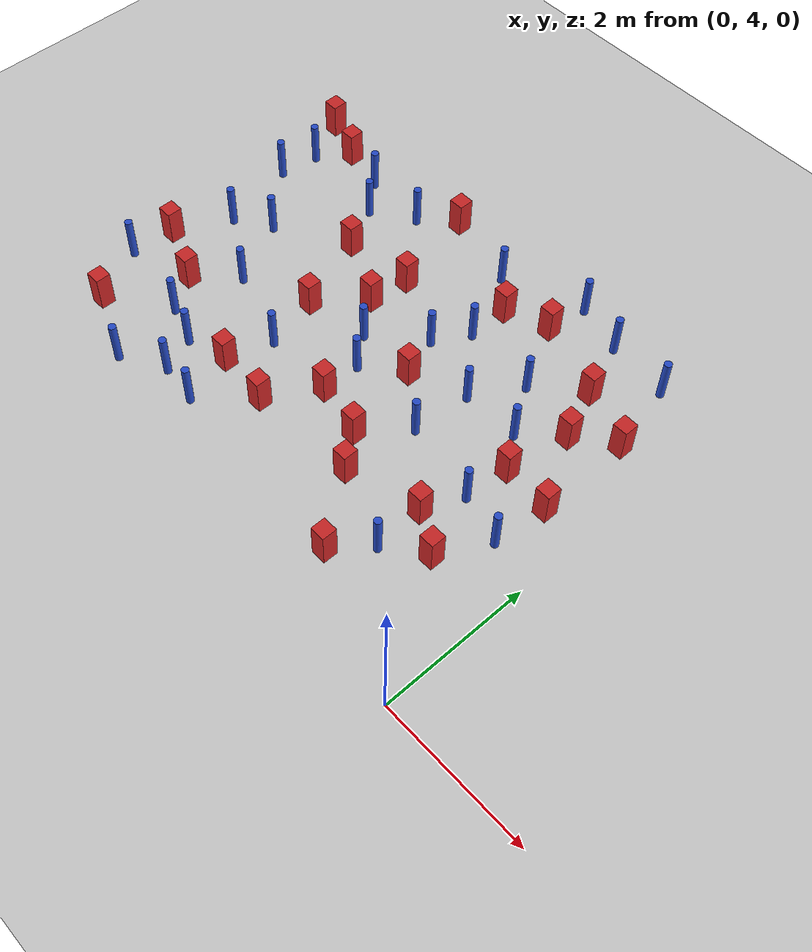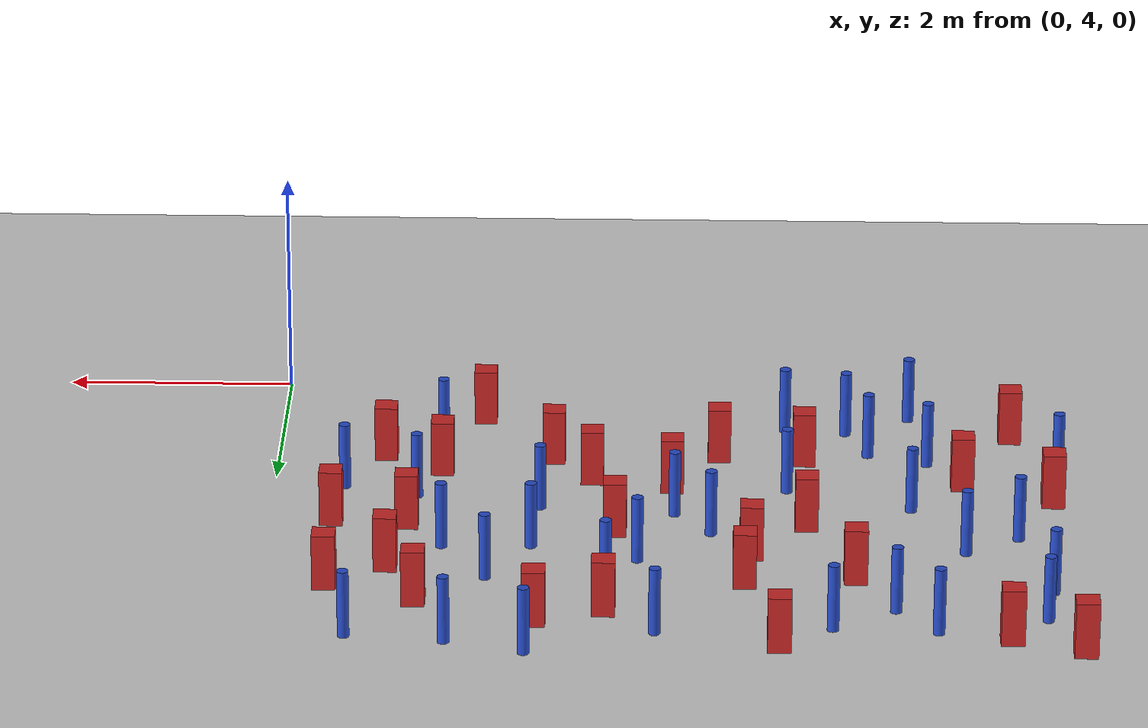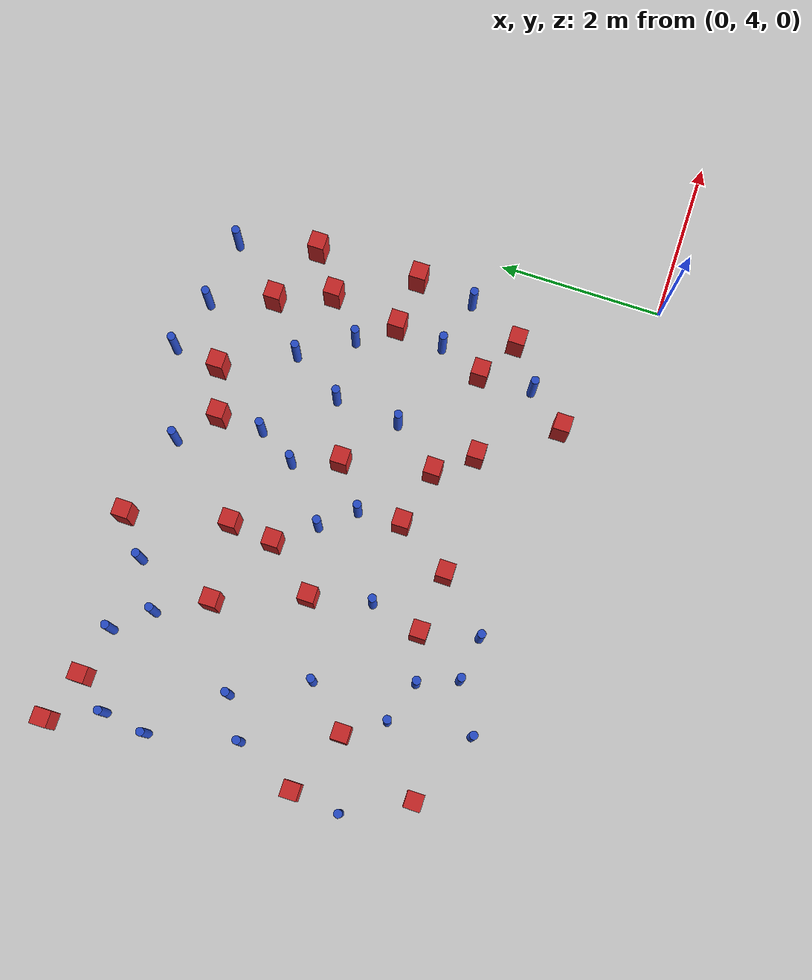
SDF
<sdf version="1.6">
 <world name="default">
  <model name="ground_plane">
   <static>1</static>
   <link name="link">
    <collision name="collision">
     <geometry><plane><normal>0 0 1</normal><size>100 100</size></plane></geometry>
     <surface><friction><ode><mu>100</mu><mu2>50</mu2></ode></friction></surface>
    </collision>
    <visual name="visual">
     <cast_shadows>0</cast_shadows>
     <geometry><plane><normal>0 0 1</normal><size>100 100</size></plane></geometry>
     <material>
      <ambient>1.0 1.0 1.0 1.0</ambient>
      <diffuse>0.8 0.8 0.8 1.0</diffuse>
      <specular>0.01 0.01 0.01 1.000000</specular>
     </material>
    </visual>
   </link>
  </model>
  <model name="pole_obstacle3">
   <static>true</static>
   <pose>-2.92639177187 8.12203701755 2.88873142074e-08 -9.90536692318e-09 4.6021994893e-07 -1.20965994988e-07</pose>
   <link name="link">
    <pose>0 0 0.3 0 -0 0</pose>
    <inertial>
     <mass>1</mass>
     <inertia><ixx>0.145833</ixx><ixy>0</ixy><ixz>0</ixz><iyy>0.145833</iyy><iyz>0</iyz><izz>0.125</izz></inertia>
    </inertial>
    <collision name="collision">
     <geometry><cylinder><radius>0.05</radius><length>.6</length></cylinder></geometry>
    </collision>
    <visual name="visual">
     <geometry><cylinder><radius>0.05</radius><length>.6</length></cylinder></geometry>
     <material>
      <script><name>Gazebo/Blue</name><uri>file://media/materials/scripts/gazebo.material</uri></script>
     </material>
    </visual>
   </link>
  </model>
  <model name="square_post_obstacle19">
   <static>true</static>
   <pose>-2.99249537254 7.10231828787 8.22691968438e-08 7.2212513382e-06 -7.54495500217e-07 2.29674213826e-05</pose>
   <link name="link">
    <pose>0 0 0.25 0 -0 0</pose>
    <inertial>
     <mass>100</mass>
     <inertia>
      <ixx>0.166667</ixx>
      <ixy>0</ixy>
      <ixz>0</ixz>
      <iyy>0.166667</iyy>
      <iyz>0</iyz>
      <izz>0.166667</izz>
     </inertia>
    </inertial>
    <collision name="collision"><geometry><box><size>.2 .2 .5</size></box></geometry></collision>
    <visual name="visual">
     <geometry><box><size>.2 .2 .5</size></box></geometry>
     <material>
      <script><name>Gazebo/Red</name><uri>file://media/materials/scripts/gazebo.material</uri></script>
     </material>
    </visual>
   </link>
  </model>
  <model name="square_post_obstacle24">
   <static>true</static>
   <pose>-6.79952586427 6.41609025633 8.22691968438e-08 7.2212513382e-06 -7.54495500217e-07 2.29674213826e-05</pose>
   <link name="link">
    <pose>0 0 0.25 0 -0 0</pose>
    <inertial>
     <mass>100</mass>
     <inertia>
      <ixx>0.166667</ixx>
      <ixy>0</ixy>
      <ixz>0</ixz>
      <iyy>0.166667</iyy>
      <iyz>0</iyz>
      <izz>0.166667</izz>
     </inertia>
    </inertial>
    <collision name="collision"><geometry><box><size>.2 .2 .5</size></box></geometry></collision>
    <visual name="visual">
     <geometry><box><size>.2 .2 .5</size></box></geometry>
     <material>
      <script><name>Gazebo/Red</name><uri>file://media/materials/scripts/gazebo.material</uri></script>
     </material>
    </visual>
   </link>
  </model>
  <model name="square_post_obstacle31">
   <static>true</static>
   <pose>-1.0478211439 7.84302001097 8.22691968438e-08 7.2212513382e-06 -7.54495500217e-07 2.29674213826e-05</pose>
   <link name="link">
    <pose>0 0 0.25 0 -0 0</pose>
    <inertial>
     <mass>100</mass>
     <inertia>
      <ixx>0.166667</ixx>
      <ixy>0</ixy>
      <ixz>0</ixz>
      <iyy>0.166667</iyy>
      <iyz>0</iyz>
      <izz>0.166667</izz>
     </inertia>
    </inertial>
    <collision name="collision"><geometry><box><size>.2 .2 .5</size></box></geometry></collision>
    <visual name="visual">
     <geometry><box><size>.2 .2 .5</size></box></geometry>
     <material>
      <script><name>Gazebo/Red</name><uri>file://media/materials/scripts/gazebo.material</uri></script>
     </material>
    </visual>
   </link>
  </model>
  <model name="pole_obstacle22">
   <static>true</static>
   <pose>-2.26788561543 9.45509403509 2.88873142074e-08 -9.90536692318e-09 4.6021994893e-07 -1.20965994988e-07</pose>
   <link name="link">
    <pose>0 0 0.3 0 -0 0</pose>
    <inertial>
     <mass>1</mass>
     <inertia><ixx>0.145833</ixx><ixy>0</ixy><ixz>0</ixz><iyy>0.145833</iyy><iyz>0</iyz><izz>0.125</izz></inertia>
    </inertial>
    <collision name="collision">
     <geometry><cylinder><radius>0.05</radius><length>.6</length></cylinder></geometry>
    </collision>
    <visual name="visual">
     <geometry><cylinder><radius>0.05</radius><length>.6</length></cylinder></geometry>
     <material>
      <script><name>Gazebo/Blue</name><uri>file://media/materials/scripts/gazebo.material</uri></script>
     </material>
    </visual>
   </link>
  </model>
  <model name="pole_obstacle24">
   <static>true</static>
   <pose>-2.27686648423 7.39670793614 2.88873142074e-08 -9.90536689859e-09 4.60219948989e-07 -1.20965994961e-07</pose>
   <link name="link">
    <pose>0 0 0.3 0 -0 0</pose>
    <inertial>
     <mass>1</mass>
     <inertia><ixx>0.145833</ixx><ixy>0</ixy><ixz>0</ixz><iyy>0.145833</iyy><iyz>0</iyz><izz>0.125</izz></inertia>
    </inertial>
    <collision name="collision">
     <geometry><cylinder><radius>0.05</radius><length>.6</length></cylinder></geometry>
    </collision>
    <visual name="visual">
     <geometry><cylinder><radius>0.05</radius><length>.6</length></cylinder></geometry>
     <material>
      <script><name>Gazebo/Blue</name><uri>file://media/materials/scripts/gazebo.material</uri></script>
     </material>
    </visual>
   </link>
  </model>
  <model name="pole_obstacle27">
   <static>true</static>
   <pose>-1.90231812255 8.03319931173 2.88873142074e-08 -9.90536689535e-09 4.60219948996e-07 -1.20965994956e-07</pose>
   <link name="link">
    <pose>0 0 0.3 0 -0 0</pose>
    <inertial>
     <mass>1</mass>
     <inertia><ixx>0.145833</ixx><ixy>0</ixy><ixz>0</ixz><iyy>0.145833</iyy><iyz>0</iyz><izz>0.125</izz></inertia>
    </inertial>
    <collision name="collision">
     <geometry><cylinder><radius>0.05</radius><length>.6</length></cylinder></geometry>
    </collision>
    <visual name="visual">
     <geometry><cylinder><radius>0.05</radius><length>.6</length></cylinder></geometry>
     <material>
      <script><name>Gazebo/Blue</name><uri>file://media/materials/scripts/gazebo.material</uri></script>
     </material>
    </visual>
   </link>
  </model>
  <model name="square_post_obstacle32">
   <static>true</static>
   <pose>-1.1926422702 6.98299563589 8.22691968438e-08 7.2212513382e-06 -7.54495500217e-07 2.29674213826e-05</pose>
   <link name="link">
    <pose>0 0 0.25 0 -0 0</pose>
    <inertial>
     <mass>100</mass>
     <inertia>
      <ixx>0.166667</ixx>
      <ixy>0</ixy>
      <ixz>0</ixz>
      <iyy>0.166667</iyy>
      <iyz>0</iyz>
      <izz>0.166667</izz>
     </inertia>
    </inertial>
    <collision name="collision"><geometry><box><size>.2 .2 .5</size></box></geometry></collision>
    <visual name="visual">
     <geometry><box><size>.2 .2 .5</size></box></geometry>
     <material>
      <script><name>Gazebo/Red</name><uri>file://media/materials/scripts/gazebo.material</uri></script>
     </material>
    </visual>
   </link>
  </model>
  <model name="pole_obstacle34">
   <static>true</static>
   <pose>-1.2561961197 6.39239754405 2.88873142074e-08 -9.90536689852e-09 4.60219948989e-07 -1.2096599496e-07</pose>
   <link name="link">
    <pose>0 0 0.3 0 -0 0</pose>
    <inertial>
     <mass>1</mass>
     <inertia><ixx>0.145833</ixx><ixy>0</ixy><ixz>0</ixz><iyy>0.145833</iyy><iyz>0</iyz><izz>0.125</izz></inertia>
    </inertial>
    <collision name="collision">
     <geometry><cylinder><radius>0.05</radius><length>.6</length></cylinder></geometry>
    </collision>
    <visual name="visual">
     <geometry><cylinder><radius>0.05</radius><length>.6</length></cylinder></geometry>
     <material>
      <script><name>Gazebo/Blue</name><uri>file://media/materials/scripts/gazebo.material</uri></script>
     </material>
    </visual>
   </link>
  </model>
  <model name="pole_obstacle36">
   <static>true</static>
   <pose>-3.81983759786 7.11145590867 2.88873142074e-08 -9.90536689859e-09 4.60219948989e-07 -1.20965994961e-07</pose>
   <link name="link">
    <pose>0 0 0.3 0 -0 0</pose>
    <inertial>
     <mass>1</mass>
     <inertia><ixx>0.145833</ixx><ixy>0</ixy><ixz>0</ixz><iyy>0.145833</iyy><iyz>0</iyz><izz>0.125</izz></inertia>
    </inertial>
    <collision name="collision">
     <geometry><cylinder><radius>0.05</radius><length>.6</length></cylinder></geometry>
    </collision>
    <visual name="visual">
     <geometry><cylinder><radius>0.05</radius><length>.6</length></cylinder></geometry>
     <material>
      <script><name>Gazebo/Blue</name><uri>file://media/materials/scripts/gazebo.material</uri></script>
     </material>
    </visual>
   </link>
  </model>
  <model name="pole_obstacle38">
   <static>true</static>
   <pose>-2.33661758871 6.60383194175 2.88873142074e-08 -9.90536689859e-09 4.60219948989e-07 -1.20965994961e-07</pose>
   <link name="link">
    <pose>0 0 0.3 0 -0 0</pose>
    <inertial>
     <mass>1</mass>
     <inertia><ixx>0.145833</ixx><ixy>0</ixy><ixz>0</ixz><iyy>0.145833</iyy><iyz>0</iyz><izz>0.125</izz></inertia>
    </inertial>
    <collision name="collision">
     <geometry><cylinder><radius>0.05</radius><length>.6</length></cylinder></geometry>
    </collision>
    <visual name="visual">
     <geometry><cylinder><radius>0.05</radius><length>.6</length></cylinder></geometry>
     <material>
      <script><name>Gazebo/Blue</name><uri>file://media/materials/scripts/gazebo.material</uri></script>
     </material>
    </visual>
   </link>
  </model>
  <model name="square_post_obstacle39">
   <static>true</static>
   <pose>-1.31494191364 8.51063799223 8.22691968438e-08 7.22125133819e-06 -7.54495500217e-07 2.29674213826e-05</pose>
   <link name="link">
    <pose>0 0 0.25 0 -0 0</pose>
    <inertial>
     <mass>100</mass>
     <inertia>
      <ixx>0.166667</ixx>
      <ixy>0</ixy>
      <ixz>0</ixz>
      <iyy>0.166667</iyy>
      <iyz>0</iyz>
      <izz>0.166667</izz>
     </inertia>
    </inertial>
    <collision name="collision"><geometry><box><size>.2 .2 .5</size></box></geometry></collision>
    <visual name="visual">
     <geometry><box><size>.2 .2 .5</size></box></geometry>
     <material>
      <script><name>Gazebo/Red</name><uri>file://media/materials/scripts/gazebo.material</uri></script>
     </material>
    </visual>
   </link>
  </model>
  <model name="square_post_obstacle40">
   <static>true</static>
   <pose>-3.89692731992 5.51840479158 8.22691968438e-08 7.2212513382e-06 -7.54495500217e-07 2.29674213826e-05</pose>
   <link name="link">
    <pose>0 0 0.25 0 -0 0</pose>
    <inertial>
     <mass>100</mass>
     <inertia>
      <ixx>0.166667</ixx>
      <ixy>0</ixy>
      <ixz>0</ixz>
      <iyy>0.166667</iyy>
      <iyz>0</iyz>
      <izz>0.166667</izz>
     </inertia>
    </inertial>
    <collision name="collision"><geometry><box><size>.2 .2 .5</size></box></geometry></collision>
    <visual name="visual">
     <geometry><box><size>.2 .2 .5</size></box></geometry>
     <material>
      <script><name>Gazebo/Red</name><uri>file://media/materials/scripts/gazebo.material</uri></script>
     </material>
    </visual>
   </link>
  </model>
  <model name="square_post_obstacle44">
   <static>true</static>
   <pose>-3.48319135456 6.18431395181 8.22691968438e-08 7.2212513382e-06 -7.54495500217e-07 2.29674213826e-05</pose>
   <link name="link">
    <pose>0 0 0.25 0 -0 0</pose>
    <inertial>
     <mass>100</mass>
     <inertia>
      <ixx>0.166667</ixx>
      <ixy>0</ixy>
      <ixz>0</ixz>
      <iyy>0.166667</iyy>
      <iyz>0</iyz>
      <izz>0.166667</izz>
     </inertia>
    </inertial>
    <collision name="collision"><geometry><box><size>.2 .2 .5</size></box></geometry></collision>
    <visual name="visual">
     <geometry><box><size>.2 .2 .5</size></box></geometry>
     <material>
      <script><name>Gazebo/Red</name><uri>file://media/materials/scripts/gazebo.material</uri></script>
     </material>
    </visual>
   </link>
  </model>
  <model name="pole_obstacle49">
   <static>true</static>
   <pose>-5.71338823489 9.00201095697 2.88873142074e-08 -9.9053668967e-09 4.60219948993e-07 -1.20965994957e-07</pose>
   <link name="link">
    <pose>0 0 0.3 0 -0 0</pose>
    <inertial>
     <mass>1</mass>
     <inertia><ixx>0.145833</ixx><ixy>0</ixy><ixz>0</ixz><iyy>0.145833</iyy><iyz>0</iyz><izz>0.125</izz></inertia>
    </inertial>
    <collision name="collision">
     <geometry><cylinder><radius>0.05</radius><length>.6</length></cylinder></geometry>
    </collision>
    <visual name="visual">
     <geometry><cylinder><radius>0.05</radius><length>.6</length></cylinder></geometry>
     <material>
      <script><name>Gazebo/Blue</name><uri>file://media/materials/scripts/gazebo.material</uri></script>
     </material>
    </visual>
   </link>
  </model>
  <model name="square_post_obstacle55">
   <static>true</static>
   <pose>-6.482823195 5.06666474402 8.22691968438e-08 7.2212513382e-06 -7.54495500217e-07 2.29674213826e-05</pose>
   <link name="link">
    <pose>0 0 0.25 0 -0 0</pose>
    <inertial>
     <mass>100</mass>
     <inertia>
      <ixx>0.166667</ixx>
      <ixy>0</ixy>
      <ixz>0</ixz>
      <iyy>0.166667</iyy>
      <iyz>0</iyz>
      <izz>0.166667</izz>
     </inertia>
    </inertial>
    <collision name="collision"><geometry><box><size>.2 .2 .5</size></box></geometry></collision>
    <visual name="visual">
     <geometry><box><size>.2 .2 .5</size></box></geometry>
     <material>
      <script><name>Gazebo/Red</name><uri>file://media/materials/scripts/gazebo.material</uri></script>
     </material>
    </visual>
   </link>
  </model>
  <model name="square_post_obstacle57">
   <static>true</static>
   <pose>-2.91551149399 8.66568908298 8.22691968438e-08 7.22125133819e-06 -7.54495500217e-07 2.29674213826e-05</pose>
   <link name="link">
    <pose>0 0 0.25 0 -0 0</pose>
    <inertial>
     <mass>100</mass>
     <inertia>
      <ixx>0.166667</ixx>
      <ixy>0</ixy>
      <ixz>0</ixz>
      <iyy>0.166667</iyy>
      <iyz>0</iyz>
      <izz>0.166667</izz>
     </inertia>
    </inertial>
    <collision name="collision"><geometry><box><size>.2 .2 .5</size></box></geometry></collision>
    <visual name="visual">
     <geometry><box><size>.2 .2 .5</size></box></geometry>
     <material>
      <script><name>Gazebo/Red</name><uri>file://media/materials/scripts/gazebo.material</uri></script>
     </material>
    </visual>
   </link>
  </model>
  <model name="pole_obstacle55">
   <static>true</static>
   <pose>-1.50792607806 7.41440394326 2.88873142074e-08 -9.90536689852e-09 4.60219948989e-07 -1.2096599496e-07</pose>
   <link name="link">
    <pose>0 0 0.3 0 -0 0</pose>
    <inertial>
     <mass>1</mass>
     <inertia><ixx>0.145833</ixx><ixy>0</ixy><ixz>0</ixz><iyy>0.145833</iyy><iyz>0</iyz><izz>0.125</izz></inertia>
    </inertial>
    <collision name="collision">
     <geometry><cylinder><radius>0.05</radius><length>.6</length></cylinder></geometry>
    </collision>
    <visual name="visual">
     <geometry><cylinder><radius>0.05</radius><length>.6</length></cylinder></geometry>
     <material>
      <script><name>Gazebo/Blue</name><uri>file://media/materials/scripts/gazebo.material</uri></script>
     </material>
    </visual>
   </link>
  </model>
  <model name="pole_obstacle59">
   <static>true</static>
   <pose>-6.46702280999 7.15638702801 2.88873142074e-08 -9.90536690842e-09 4.60219948965e-07 -1.20965994976e-07</pose>
   <link name="link">
    <pose>0 0 0.3 0 -0 0</pose>
    <inertial>
     <mass>1</mass>
     <inertia><ixx>0.145833</ixx><ixy>0</ixy><ixz>0</ixz><iyy>0.145833</iyy><iyz>0</iyz><izz>0.125</izz></inertia>
    </inertial>
    <collision name="collision">
     <geometry><cylinder><radius>0.05</radius><length>.6</length></cylinder></geometry>
    </collision>
    <visual name="visual">
     <geometry><cylinder><radius>0.05</radius><length>.6</length></cylinder></geometry>
     <material>
      <script><name>Gazebo/Blue</name><uri>file://media/materials/scripts/gazebo.material</uri></script>
     </material>
    </visual>
   </link>
  </model>
  <model name="pole_obstacle60">
   <static>true</static>
   <pose>-6.63900841771 8.74179401055 2.88873142074e-08 -9.9053668967e-09 4.60219948993e-07 -1.20965994957e-07</pose>
   <link name="link">
    <pose>0 0 0.3 0 -0 0</pose>
    <inertial>
     <mass>1</mass>
     <inertia><ixx>0.145833</ixx><ixy>0</ixy><ixz>0</ixz><iyy>0.145833</iyy><iyz>0</iyz><izz>0.125</izz></inertia>
    </inertial>
    <collision name="collision">
     <geometry><cylinder><radius>0.05</radius><length>.6</length></cylinder></geometry>
    </collision>
    <visual name="visual">
     <geometry><cylinder><radius>0.05</radius><length>.6</length></cylinder></geometry>
     <material>
      <script><name>Gazebo/Blue</name><uri>file://media/materials/scripts/gazebo.material</uri></script>
     </material>
    </visual>
   </link>
  </model>
  <model name="square_post_obstacle69">
   <static>true</static>
   <pose>-6.02272241105 6.08075807865 8.22691968438e-08 7.22125133819e-06 -7.54495500217e-07 2.29674213826e-05</pose>
   <link name="link">
    <pose>0 0 0.25 0 -0 0</pose>
    <inertial>
     <mass>100</mass>
     <inertia>
      <ixx>0.166667</ixx>
      <ixy>0</ixy>
      <ixz>0</ixz>
      <iyy>0.166667</iyy>
      <iyz>0</iyz>
      <izz>0.166667</izz>
     </inertia>
    </inertial>
    <collision name="collision"><geometry><box><size>.2 .2 .5</size></box></geometry></collision>
    <visual name="visual">
     <geometry><box><size>.2 .2 .5</size></box></geometry>
     <material>
      <script><name>Gazebo/Red</name><uri>file://media/materials/scripts/gazebo.material</uri></script>
     </material>
    </visual>
   </link>
  </model>
  <model name="pole_obstacle72">
   <static>true</static>
   <pose>-4.48437091059 4.90729772808 2.88873142074e-08 -9.90536690842e-09 4.60219948965e-07 -1.20965994976e-07</pose>
   <link name="link">
    <pose>0 0 0.3 0 -0 0</pose>
    <inertial>
     <mass>1</mass>
     <inertia><ixx>0.145833</ixx><ixy>0</ixy><ixz>0</ixz><iyy>0.145833</iyy><iyz>0</iyz><izz>0.125</izz></inertia>
    </inertial>
    <collision name="collision">
     <geometry><cylinder><radius>0.05</radius><length>.6</length></cylinder></geometry>
    </collision>
    <visual name="visual">
     <geometry><cylinder><radius>0.05</radius><length>.6</length></cylinder></geometry>
     <material>
      <script><name>Gazebo/Blue</name><uri>file://media/materials/scripts/gazebo.material</uri></script>
     </material>
    </visual>
   </link>
  </model>
  <model name="pole_obstacle73">
   <static>true</static>
   <pose>-4.83392286763 8.95649630387 2.88873142074e-08 -9.9053668967e-09 4.60219948993e-07 -1.20965994957e-07</pose>
   <link name="link">
    <pose>0 0 0.3 0 -0 0</pose>
    <inertial>
     <mass>1</mass>
     <inertia><ixx>0.145833</ixx><ixy>0</ixy><ixz>0</ixz><iyy>0.145833</iyy><iyz>0</iyz><izz>0.125</izz></inertia>
    </inertial>
    <collision name="collision">
     <geometry><cylinder><radius>0.05</radius><length>.6</length></cylinder></geometry>
    </collision>
    <visual name="visual">
     <geometry><cylinder><radius>0.05</radius><length>.6</length></cylinder></geometry>
     <material>
      <script><name>Gazebo/Blue</name><uri>file://media/materials/scripts/gazebo.material</uri></script>
     </material>
    </visual>
   </link>
  </model>
  <model name="pole_obstacle74">
   <static>true</static>
   <pose>-5.5614784971 6.58900507999 2.88873142074e-08 -9.90536690842e-09 4.60219948965e-07 -1.20965994976e-07</pose>
   <link name="link">
    <pose>0 0 0.3 0 -0 0</pose>
    <inertial>
     <mass>1</mass>
     <inertia><ixx>0.145833</ixx><ixy>0</ixy><ixz>0</ixz><iyy>0.145833</iyy><iyz>0</iyz><izz>0.125</izz></inertia>
    </inertial>
    <collision name="collision">
     <geometry><cylinder><radius>0.05</radius><length>.6</length></cylinder></geometry>
    </collision>
    <visual name="visual">
     <geometry><cylinder><radius>0.05</radius><length>.6</length></cylinder></geometry>
     <material>
      <script><name>Gazebo/Blue</name><uri>file://media/materials/scripts/gazebo.material</uri></script>
     </material>
    </visual>
   </link>
  </model>
  <model name="pole_obstacle77">
   <static>true</static>
   <pose>-0.765326476031 9.17554351963 2.88873142074e-08 -9.90536690779e-09 4.60219948967e-07 -1.20965994975e-07</pose>
   <link name="link">
    <pose>0 0 0.3 0 -0 0</pose>
    <inertial>
     <mass>1</mass>
     <inertia><ixx>0.145833</ixx><ixy>0</ixy><ixz>0</ixz><iyy>0.145833</iyy><iyz>0</iyz><izz>0.125</izz></inertia>
    </inertial>
    <collision name="collision">
     <geometry><cylinder><radius>0.05</radius><length>.6</length></cylinder></geometry>
    </collision>
    <visual name="visual">
     <geometry><cylinder><radius>0.05</radius><length>.6</length></cylinder></geometry>
     <material>
      <script><name>Gazebo/Blue</name><uri>file://media/materials/scripts/gazebo.material</uri></script>
     </material>
    </visual>
   </link>
  </model>
  <model name="pole_obstacle88">
   <static>true</static>
   <pose>-5.0236219871 4.97803948495 2.88873142074e-08 -9.90536690842e-09 4.60219948965e-07 -1.20965994976e-07</pose>
   <link name="link">
    <pose>0 0 0.3 0 -0 0</pose>
    <inertial>
     <mass>1</mass>
     <inertia><ixx>0.145833</ixx><ixy>0</ixy><ixz>0</ixz><iyy>0.145833</iyy><iyz>0</iyz><izz>0.125</izz></inertia>
    </inertial>
    <collision name="collision">
     <geometry><cylinder><radius>0.05</radius><length>.6</length></cylinder></geometry>
    </collision>
    <visual name="visual">
     <geometry><cylinder><radius>0.05</radius><length>.6</length></cylinder></geometry>
     <material>
      <script><name>Gazebo/Blue</name><uri>file://media/materials/scripts/gazebo.material</uri></script>
     </material>
    </visual>
   </link>
  </model>
  <model name="square_post_obstacle82">
   <static>true</static>
   <pose>-2.33531535072 8.87639058758 8.22691968438e-08 7.22125133819e-06 -7.54495500217e-07 2.29674213826e-05</pose>
   <link name="link">
    <pose>0 0 0.25 0 -0 0</pose>
    <inertial>
     <mass>100</mass>
     <inertia>
      <ixx>0.166667</ixx>
      <ixy>0</ixy>
      <ixz>0</ixz>
      <iyy>0.166667</iyy>
      <iyz>0</iyz>
      <izz>0.166667</izz>
     </inertia>
    </inertial>
    <collision name="collision"><geometry><box><size>.2 .2 .5</size></box></geometry></collision>
    <visual name="visual">
     <geometry><box><size>.2 .2 .5</size></box></geometry>
     <material>
      <script><name>Gazebo/Red</name><uri>file://media/materials/scripts/gazebo.material</uri></script>
     </material>
    </visual>
   </link>
  </model>
  <model name="square_post_obstacle87">
   <static>true</static>
   <pose>-5.04467069698 7.99555109241 8.22691968438e-08 7.22125133819e-06 -7.54495500217e-07 2.29674213826e-05</pose>
   <link name="link">
    <pose>0 0 0.25 0 -0 0</pose>
    <inertial>
     <mass>100</mass>
     <inertia>
      <ixx>0.166667</ixx>
      <ixy>0</ixy>
      <ixz>0</ixz>
      <iyy>0.166667</iyy>
      <iyz>0</iyz>
      <izz>0.166667</izz>
     </inertia>
    </inertial>
    <collision name="collision"><geometry><box><size>.2 .2 .5</size></box></geometry></collision>
    <visual name="visual">
     <geometry><box><size>.2 .2 .5</size></box></geometry>
     <material>
      <script><name>Gazebo/Red</name><uri>file://media/materials/scripts/gazebo.material</uri></script>
     </material>
    </visual>
   </link>
  </model>
  <model name="square_post_obstacle89">
   <static>true</static>
   <pose>-4.64549269695 6.94663192449 8.22691968438e-08 7.2212513382e-06 -7.54495500217e-07 2.29674213826e-05</pose>
   <link name="link">
    <pose>0 0 0.25 0 -0 0</pose>
    <inertial>
     <mass>100</mass>
     <inertia>
      <ixx>0.166667</ixx>
      <ixy>0</ixy>
      <ixz>0</ixz>
      <iyy>0.166667</iyy>
      <iyz>0</iyz>
      <izz>0.166667</izz>
     </inertia>
    </inertial>
    <collision name="collision"><geometry><box><size>.2 .2 .5</size></box></geometry></collision>
    <visual name="visual">
     <geometry><box><size>.2 .2 .5</size></box></geometry>
     <material>
      <script><name>Gazebo/Red</name><uri>file://media/materials/scripts/gazebo.material</uri></script>
     </material>
    </visual>
   </link>
  </model>
  <model name="square_post_obstacle118">
   <static>true</static>
   <pose>-2.43553967947 5.59801089489 8.22691968438e-08 7.2212513382e-06 -7.54495500217e-07 2.29674213826e-05</pose>
   <link name="link">
    <pose>0 0 0.25 0 -0 0</pose>
    <inertial>
     <mass>100</mass>
     <inertia>
      <ixx>0.166667</ixx>
      <ixy>0</ixy>
      <ixz>0</ixz>
      <iyy>0.166667</iyy>
      <iyz>0</iyz>
      <izz>0.166667</izz>
     </inertia>
    </inertial>
    <collision name="collision"><geometry><box><size>.2 .2 .5</size></box></geometry></collision>
    <visual name="visual">
     <geometry><box><size>.2 .2 .5</size></box></geometry>
     <material>
      <script><name>Gazebo/Red</name><uri>file://media/materials/scripts/gazebo.material</uri></script>
     </material>
    </visual>
   </link>
  </model>
  <model name="square_post_obstacle120">
   <static>true</static>
   <pose>-4.38305367459 9.31447458652 8.22691968438e-08 7.22125133819e-06 -7.54495500217e-07 2.29674213826e-05</pose>
   <link name="link">
    <pose>0 0 0.25 0 -0 0</pose>
    <inertial>
     <mass>100</mass>
     <inertia>
      <ixx>0.166667</ixx>
      <ixy>0</ixy>
      <ixz>0</ixz>
      <iyy>0.166667</iyy>
      <iyz>0</iyz>
      <izz>0.166667</izz>
     </inertia>
    </inertial>
    <collision name="collision"><geometry><box><size>.2 .2 .5</size></box></geometry></collision>
    <visual name="visual">
     <geometry><box><size>.2 .2 .5</size></box></geometry>
     <material>
      <script><name>Gazebo/Red</name><uri>file://media/materials/scripts/gazebo.material</uri></script>
     </material>
    </visual>
   </link>
  </model>
  <model name="square_post_obstacle122">
   <static>true</static>
   <pose>-4.16580970984 7.54714332797 8.22691968438e-08 7.2212513382e-06 -7.54495500217e-07 2.29674213826e-05</pose>
   <link name="link">
    <pose>0 0 0.25 0 -0 0</pose>
    <inertial>
     <mass>100</mass>
     <inertia>
      <ixx>0.166667</ixx>
      <ixy>0</ixy>
      <ixz>0</ixz>
      <iyy>0.166667</iyy>
      <iyz>0</iyz>
      <izz>0.166667</izz>
     </inertia>
    </inertial>
    <collision name="collision"><geometry><box><size>.2 .2 .5</size></box></geometry></collision>
    <visual name="visual">
     <geometry><box><size>.2 .2 .5</size></box></geometry>
     <material>
      <script><name>Gazebo/Red</name><uri>file://media/materials/scripts/gazebo.material</uri></script>
     </material>
    </visual>
   </link>
  </model>
  <model name="square_post_obstacle124">
   <static>true</static>
   <pose>-6.91262573354 9.35030546557 8.22691968438e-08 7.22125133819e-06 -7.54495500217e-07 2.29674213826e-05</pose>
   <link name="link">
    <pose>0 0 0.25 0 -0 0</pose>
    <inertial>
     <mass>100</mass>
     <inertia>
      <ixx>0.166667</ixx>
      <ixy>0</ixy>
      <ixz>0</ixz>
      <iyy>0.166667</iyy>
      <iyz>0</iyz>
      <izz>0.166667</izz>
     </inertia>
    </inertial>
    <collision name="collision"><geometry><box><size>.2 .2 .5</size></box></geometry></collision>
    <visual name="visual">
     <geometry><box><size>.2 .2 .5</size></box></geometry>
     <material>
      <script><name>Gazebo/Red</name><uri>file://media/materials/scripts/gazebo.material</uri></script>
     </material>
    </visual>
   </link>
  </model>
  <model name="pole_obstacle141">
   <static>true</static>
   <pose>-5.21324696391 5.44830748278 2.88873142074e-08 -9.90536690842e-09 4.60219948965e-07 -1.20965994976e-07</pose>
   <link name="link">
    <pose>0 0 0.3 0 -0 0</pose>
    <inertial>
     <mass>1</mass>
     <inertia><ixx>0.145833</ixx><ixy>0</ixy><ixz>0</ixz><iyy>0.145833</iyy><iyz>0</iyz><izz>0.125</izz></inertia>
    </inertial>
    <collision name="collision">
     <geometry><cylinder><radius>0.05</radius><length>.6</length></cylinder></geometry>
    </collision>
    <visual name="visual">
     <geometry><cylinder><radius>0.05</radius><length>.6</length></cylinder></geometry>
     <material>
      <script><name>Gazebo/Blue</name><uri>file://media/materials/scripts/gazebo.material</uri></script>
     </material>
    </visual>
   </link>
  </model>
  <model name="pole_obstacle147">
   <static>true</static>
   <pose>-4.48494873299 6.21391461836 2.88873142074e-08 -9.90536690842e-09 4.60219948965e-07 -1.20965994976e-07</pose>
   <link name="link">
    <pose>0 0 0.3 0 -0 0</pose>
    <inertial>
     <mass>1</mass>
     <inertia><ixx>0.145833</ixx><ixy>0</ixy><ixz>0</ixz><iyy>0.145833</iyy><iyz>0</iyz><izz>0.125</izz></inertia>
    </inertial>
    <collision name="collision">
     <geometry><cylinder><radius>0.05</radius><length>.6</length></cylinder></geometry>
    </collision>
    <visual name="visual">
     <geometry><cylinder><radius>0.05</radius><length>.6</length></cylinder></geometry>
     <material>
      <script><name>Gazebo/Blue</name><uri>file://media/materials/scripts/gazebo.material</uri></script>
     </material>
    </visual>
   </link>
  </model>
  <model name="pole_obstacle152">
   <static>true</static>
   <pose>-6.71382809264 8.20812245759 2.88873142074e-08 -9.9053668967e-09 4.60219948993e-07 -1.20965994957e-07</pose>
   <link name="link">
    <pose>0 0 0.3 0 -0 0</pose>
    <inertial>
     <mass>1</mass>
     <inertia><ixx>0.145833</ixx><ixy>0</ixy><ixz>0</ixz><iyy>0.145833</iyy><iyz>0</iyz><izz>0.125</izz></inertia>
    </inertial>
    <collision name="collision">
     <geometry><cylinder><radius>0.05</radius><length>.6</length></cylinder></geometry>
    </collision>
    <visual name="visual">
     <geometry><cylinder><radius>0.05</radius><length>.6</length></cylinder></geometry>
     <material>
      <script><name>Gazebo/Blue</name><uri>file://media/materials/scripts/gazebo.material</uri></script>
     </material>
    </visual>
   </link>
  </model>
  <model name="square_post_obstacle147">
   <static>true</static>
   <pose>-1.45995180785 5.85541020817 8.22691968438e-08 7.2212513382e-06 -7.54495500217e-07 2.29674213826e-05</pose>
   <link name="link">
    <pose>0 0 0.25 0 -0 0</pose>
    <inertial>
     <mass>100</mass>
     <inertia>
      <ixx>0.166667</ixx>
      <ixy>0</ixy>
      <ixz>0</ixz>
      <iyy>0.166667</iyy>
      <iyz>0</iyz>
      <izz>0.166667</izz>
     </inertia>
    </inertial>
    <collision name="collision"><geometry><box><size>.2 .2 .5</size></box></geometry></collision>
    <visual name="visual">
     <geometry><box><size>.2 .2 .5</size></box></geometry>
     <material>
      <script><name>Gazebo/Red</name><uri>file://media/materials/scripts/gazebo.material</uri></script>
     </material>
    </visual>
   </link>
  </model>
  <model name="pole_obstacle161">
   <static>true</static>
   <pose>-5.72882006585 5.62726699809 2.88873142074e-08 -9.90536690842e-09 4.60219948965e-07 -1.20965994976e-07</pose>
   <link name="link">
    <pose>0 0 0.3 0 -0 0</pose>
    <inertial>
     <mass>1</mass>
     <inertia><ixx>0.145833</ixx><ixy>0</ixy><ixz>0</ixz><iyy>0.145833</iyy><iyz>0</iyz><izz>0.125</izz></inertia>
    </inertial>
    <collision name="collision">
     <geometry><cylinder><radius>0.05</radius><length>.6</length></cylinder></geometry>
    </collision>
    <visual name="visual">
     <geometry><cylinder><radius>0.05</radius><length>.6</length></cylinder></geometry>
     <material>
      <script><name>Gazebo/Blue</name><uri>file://media/materials/scripts/gazebo.material</uri></script>
     </material>
    </visual>
   </link>
  </model>
  <model name="square_post_obstacle166">
   <static>true</static>
   <pose>-2.78026119397 6.02635617994 8.22691968438e-08 7.2212513382e-06 -7.54495500217e-07 2.29674213826e-05</pose>
   <link name="link">
    <pose>0 0 0.25 0 -0 0</pose>
    <inertial>
     <mass>100</mass>
     <inertia>
      <ixx>0.166667</ixx>
      <ixy>0</ixy>
      <ixz>0</ixz>
      <iyy>0.166667</iyy>
      <iyz>0</iyz>
      <izz>0.166667</izz>
     </inertia>
    </inertial>
    <collision name="collision"><geometry><box><size>.2 .2 .5</size></box></geometry></collision>
    <visual name="visual">
     <geometry><box><size>.2 .2 .5</size></box></geometry>
     <material>
      <script><name>Gazebo/Red</name><uri>file://media/materials/scripts/gazebo.material</uri></script>
     </material>
    </visual>
   </link>
  </model>
  <model name="pole_obstacle182">
   <static>true</static>
   <pose>-0.615223382686 6.20907511173 2.88873142074e-08 -9.90536689661e-09 4.60219948993e-07 -1.20965994957e-07</pose>
   <link name="link">
    <pose>0 0 0.3 0 -0 0</pose>
    <inertial>
     <mass>1</mass>
     <inertia><ixx>0.145833</ixx><ixy>0</ixy><ixz>0</ixz><iyy>0.145833</iyy><iyz>0</iyz><izz>0.125</izz></inertia>
    </inertial>
    <collision name="collision">
     <geometry><cylinder><radius>0.05</radius><length>.6</length></cylinder></geometry>
    </collision>
    <visual name="visual">
     <geometry><cylinder><radius>0.05</radius><length>.6</length></cylinder></geometry>
     <material>
      <script><name>Gazebo/Blue</name><uri>file://media/materials/scripts/gazebo.material</uri></script>
     </material>
    </visual>
   </link>
  </model>
  <model name="square_post_obstacle172">
   <static>true</static>
   <pose>-0.54882194466 8.2104337385 8.22691968438e-08 7.22125133819e-06 -7.54495500217e-07 2.29674213826e-05</pose>
   <link name="link">
    <pose>0 0 0.25 0 -0 0</pose>
    <inertial>
     <mass>100</mass>
     <inertia>
      <ixx>0.166667</ixx>
      <ixy>0</ixy>
      <ixz>0</ixz>
      <iyy>0.166667</iyy>
      <iyz>0</iyz>
      <izz>0.166667</izz>
     </inertia>
    </inertial>
    <collision name="collision"><geometry><box><size>.2 .2 .5</size></box></geometry></collision>
    <visual name="visual">
     <geometry><box><size>.2 .2 .5</size></box></geometry>
     <material>
      <script><name>Gazebo/Red</name><uri>file://media/materials/scripts/gazebo.material</uri></script>
     </material>
    </visual>
   </link>
  </model>
  <model name="square_post_obstacle182">
   <static>true</static>
   <pose>-1.80414806318 4.73412619616 8.22691968438e-08 7.2212513382e-06 -7.54495500217e-07 2.29674213826e-05</pose>
   <link name="link">
    <pose>0 0 0.25 0 -0 0</pose>
    <inertial>
     <mass>100</mass>
     <inertia>
      <ixx>0.166667</ixx>
      <ixy>0</ixy>
      <ixz>0</ixz>
      <iyy>0.166667</iyy>
      <iyz>0</iyz>
      <izz>0.166667</izz>
     </inertia>
    </inertial>
    <collision name="collision"><geometry><box><size>.2 .2 .5</size></box></geometry></collision>
    <visual name="visual">
     <geometry><box><size>.2 .2 .5</size></box></geometry>
     <material>
      <script><name>Gazebo/Red</name><uri>file://media/materials/scripts/gazebo.material</uri></script>
     </material>
    </visual>
   </link>
  </model>
  <model name="pole_obstacle191">
   <static>true</static>
   <pose>-5.59273721782 4.65534873406 2.88873142074e-08 -9.90536690842e-09 4.60219948965e-07 -1.20965994976e-07</pose>
   <link name="link">
    <pose>0 0 0.3 0 -0 0</pose>
    <inertial>
     <mass>1</mass>
     <inertia><ixx>0.145833</ixx><ixy>0</ixy><ixz>0</ixz><iyy>0.145833</iyy><iyz>0</iyz><izz>0.125</izz></inertia>
    </inertial>
    <collision name="collision">
     <geometry><cylinder><radius>0.05</radius><length>.6</length></cylinder></geometry>
    </collision>
    <visual name="visual">
     <geometry><cylinder><radius>0.05</radius><length>.6</length></cylinder></geometry>
     <material>
      <script><name>Gazebo/Blue</name><uri>file://media/materials/scripts/gazebo.material</uri></script>
     </material>
    </visual>
   </link>
  </model>
  <model name="pole_obstacle192">
   <static>true</static>
   <pose>-6.00256424489 7.45525889832 2.88873142074e-08 -9.90536690842e-09 4.60219948965e-07 -1.20965994976e-07</pose>
   <link name="link">
    <pose>0 0 0.3 0 -0 0</pose>
    <inertial>
     <mass>1</mass>
     <inertia><ixx>0.145833</ixx><ixy>0</ixy><ixz>0</ixz><iyy>0.145833</iyy><iyz>0</iyz><izz>0.125</izz></inertia>
    </inertial>
    <collision name="collision">
     <geometry><cylinder><radius>0.05</radius><length>.6</length></cylinder></geometry>
    </collision>
    <visual name="visual">
     <geometry><cylinder><radius>0.05</radius><length>.6</length></cylinder></geometry>
     <material>
      <script><name>Gazebo/Blue</name><uri>file://media/materials/scripts/gazebo.material</uri></script>
     </material>
    </visual>
   </link>
  </model>
  <model name="pole_obstacle196">
   <static>true</static>
   <pose>-1.60020522333 9.26386781271 2.88873142074e-08 -9.90536690474e-09 4.60219948974e-07 -1.2096599497e-07</pose>
   <link name="link">
    <pose>0 0 0.3 0 -0 0</pose>
    <inertial>
     <mass>1</mass>
     <inertia><ixx>0.145833</ixx><ixy>0</ixy><ixz>0</ixz><iyy>0.145833</iyy><iyz>0</iyz><izz>0.125</izz></inertia>
    </inertial>
    <collision name="collision">
     <geometry><cylinder><radius>0.05</radius><length>.6</length></cylinder></geometry>
    </collision>
    <visual name="visual">
     <geometry><cylinder><radius>0.05</radius><length>.6</length></cylinder></geometry>
     <material>
      <script><name>Gazebo/Blue</name><uri>file://media/materials/scripts/gazebo.material</uri></script>
     </material>
    </visual>
   </link>
  </model>
  <model name="square_post_obstacle192">
   <static>true</static>
   <pose>-4.64443449626 5.59128110482 8.22691968438e-08 7.2212513382e-06 -7.54495500217e-07 2.29674213826e-05</pose>
   <link name="link">
    <pose>0 0 0.25 0 -0 0</pose>
    <inertial>
     <mass>100</mass>
     <inertia>
      <ixx>0.166667</ixx>
      <ixy>0</ixy>
      <ixz>0</ixz>
      <iyy>0.166667</iyy>
      <iyz>0</iyz>
      <izz>0.166667</izz>
     </inertia>
    </inertial>
    <collision name="collision"><geometry><box><size>.2 .2 .5</size></box></geometry></collision>
    <visual name="visual">
     <geometry><box><size>.2 .2 .5</size></box></geometry>
     <material>
      <script><name>Gazebo/Red</name><uri>file://media/materials/scripts/gazebo.material</uri></script>
     </material>
    </visual>
   </link>
  </model>
  <model name="square_post_obstacle195">
   <static>true</static>
   <pose>-4.10282410378 8.09652238567 8.22691968438e-08 7.22125133819e-06 -7.54495500217e-07 2.29674213826e-05</pose>
   <link name="link">
    <pose>0 0 0.25 0 -0 0</pose>
    <inertial>
     <mass>100</mass>
     <inertia>
      <ixx>0.166667</ixx>
      <ixy>0</ixy>
      <ixz>0</ixz>
      <iyy>0.166667</iyy>
      <iyz>0</iyz>
      <izz>0.166667</izz>
     </inertia>
    </inertial>
    <collision name="collision"><geometry><box><size>.2 .2 .5</size></box></geometry></collision>
    <visual name="visual">
     <geometry><box><size>.2 .2 .5</size></box></geometry>
     <material>
      <script><name>Gazebo/Red</name><uri>file://media/materials/scripts/gazebo.material</uri></script>
     </material>
    </visual>
   </link>
  </model>
  <model name="square_post_obstacle196">
   <static>true</static>
   <pose>-6.31815140833 9.128688717 8.22691968438e-08 7.22125133819e-06 -7.54495500217e-07 2.29674213826e-05</pose>
   <link name="link">
    <pose>0 0 0.25 0 -0 0</pose>
    <inertial>
     <mass>100</mass>
     <inertia>
      <ixx>0.166667</ixx>
      <ixy>0</ixy>
      <ixz>0</ixz>
      <iyy>0.166667</iyy>
      <iyz>0</iyz>
      <izz>0.166667</izz>
     </inertia>
    </inertial>
    <collision name="collision"><geometry><box><size>.2 .2 .5</size></box></geometry></collision>
    <visual name="visual">
     <geometry><box><size>.2 .2 .5</size></box></geometry>
     <material>
      <script><name>Gazebo/Red</name><uri>file://media/materials/scripts/gazebo.material</uri></script>
     </material>
    </visual>
   </link>
  </model>
  <model name="square_post_obstacle198">
   <static>true</static>
   <pose>-0.949295805812 5.55154578742 8.22691968438e-08 7.22125133819e-06 -7.54495500217e-07 2.29674213826e-05</pose>
   <link name="link">
    <pose>0 0 0.25 0 -0 0</pose>
    <inertial>
     <mass>100</mass>
     <inertia>
      <ixx>0.166667</ixx>
      <ixy>0</ixy>
      <ixz>0</ixz>
      <iyy>0.166667</iyy>
      <iyz>0</iyz>
      <izz>0.166667</izz>
     </inertia>
    </inertial>
    <collision name="collision"><geometry><box><size>.2 .2 .5</size></box></geometry></collision>
    <visual name="visual">
     <geometry><box><size>.2 .2 .5</size></box></geometry>
     <material>
      <script><name>Gazebo/Red</name><uri>file://media/materials/scripts/gazebo.material</uri></script>
     </material>
    </visual>
   </link>
  </model>
  <model name="pole_obstacle210">
   <static>true</static>
   <pose>-3.34787053531 9.05856324676 2.88873142074e-08 -9.90536692318e-09 4.6021994893e-07 -1.20965994988e-07</pose>
   <link name="link">
    <pose>0 0 0.3 0 -0 0</pose>
    <inertial>
     <mass>1</mass>
     <inertia><ixx>0.145833</ixx><ixy>0</ixy><ixz>0</ixz><iyy>0.145833</iyy><iyz>0</iyz><izz>0.125</izz></inertia>
    </inertial>
    <collision name="collision">
     <geometry><cylinder><radius>0.05</radius><length>.6</length></cylinder></geometry>
    </collision>
    <visual name="visual">
     <geometry><cylinder><radius>0.05</radius><length>.6</length></cylinder></geometry>
     <material>
      <script><name>Gazebo/Blue</name><uri>file://media/materials/scripts/gazebo.material</uri></script>
     </material>
    </visual>
   </link>
  </model>
  <model name="pole_obstacle214">
   <static>true</static>
   <pose>-5.37068991159 8.59582646232 2.88873142074e-08 -9.9053668967e-09 4.60219948993e-07 -1.20965994957e-07</pose>
   <link name="link">
    <pose>0 0 0.3 0 -0 0</pose>
    <inertial>
     <mass>1</mass>
     <inertia><ixx>0.145833</ixx><ixy>0</ixy><ixz>0</ixz><iyy>0.145833</iyy><iyz>0</iyz><izz>0.125</izz></inertia>
    </inertial>
    <collision name="collision">
     <geometry><cylinder><radius>0.05</radius><length>.6</length></cylinder></geometry>
    </collision>
    <visual name="visual">
     <geometry><cylinder><radius>0.05</radius><length>.6</length></cylinder></geometry>
     <material>
      <script><name>Gazebo/Blue</name><uri>file://media/materials/scripts/gazebo.material</uri></script>
     </material>
    </visual>
   </link>
  </model>
  <model name="pole_obstacle215">
   <static>true</static>
   <pose>-3.19085546667 7.6593707665 2.88873142074e-08 -9.90536689859e-09 4.60219948989e-07 -1.20965994961e-07</pose>
   <link name="link">
    <pose>0 0 0.3 0 -0 0</pose>
    <inertial>
     <mass>1</mass>
     <inertia><ixx>0.145833</ixx><ixy>0</ixy><ixz>0</ixz><iyy>0.145833</iyy><iyz>0</iyz><izz>0.125</izz></inertia>
    </inertial>
    <collision name="collision">
     <geometry><cylinder><radius>0.05</radius><length>.6</length></cylinder></geometry>
    </collision>
    <visual name="visual">
     <geometry><cylinder><radius>0.05</radius><length>.6</length></cylinder></geometry>
     <material>
      <script><name>Gazebo/Blue</name><uri>file://media/materials/scripts/gazebo.material</uri></script>
     </material>
    </visual>
   </link>
  </model>
  <model name="pole_obstacle216">
   <static>true</static>
   <pose>-1.44330264771 5.19967072299 2.88873142074e-08 -9.90536689852e-09 4.60219948989e-07 -1.2096599496e-07</pose>
   <link name="link">
    <pose>0 0 0.3 0 -0 0</pose>
    <inertial>
     <mass>1</mass>
     <inertia><ixx>0.145833</ixx><ixy>0</ixy><ixz>0</ixz><iyy>0.145833</iyy><iyz>0</iyz><izz>0.125</izz></inertia>
    </inertial>
    <collision name="collision">
     <geometry><cylinder><radius>0.05</radius><length>.6</length></cylinder></geometry>
    </collision>
    <visual name="visual">
     <geometry><cylinder><radius>0.05</radius><length>.6</length></cylinder></geometry>
     <material>
      <script><name>Gazebo/Blue</name><uri>file://media/materials/scripts/gazebo.material</uri></script>
     </material>
    </visual>
   </link>
  </model>
  <model name="pole_obstacle219">
   <static>true</static>
   <pose>-3.50561055059 6.72176873332 2.88873142074e-08 -9.90536692062e-09 4.60219948937e-07 -1.20965994985e-07</pose>
   <link name="link">
    <pose>0 0 0.3 0 -0 0</pose>
    <inertial>
     <mass>1</mass>
     <inertia><ixx>0.145833</ixx><ixy>0</ixy><ixz>0</ixz><iyy>0.145833</iyy><iyz>0</iyz><izz>0.125</izz></inertia>
    </inertial>
    <collision name="collision">
     <geometry><cylinder><radius>0.05</radius><length>.6</length></cylinder></geometry>
    </collision>
    <visual name="visual">
     <geometry><cylinder><radius>0.05</radius><length>.6</length></cylinder></geometry>
     <material>
      <script><name>Gazebo/Blue</name><uri>file://media/materials/scripts/gazebo.material</uri></script>
     </material>
    </visual>
   </link>
  </model>
  <model name="pole_obstacle228">
   <static>true</static>
   <pose>-6.87332451578 5.82311379842 2.88873142074e-08 -9.90536690842e-09 4.60219948965e-07 -1.20965994976e-07</pose>
   <link name="link">
    <pose>0 0 0.3 0 -0 0</pose>
    <inertial>
     <mass>1</mass>
     <inertia><ixx>0.145833</ixx><ixy>0</ixy><ixz>0</ixz><iyy>0.145833</iyy><iyz>0</iyz><izz>0.125</izz></inertia>
    </inertial>
    <collision name="collision">
     <geometry><cylinder><radius>0.05</radius><length>.6</length></cylinder></geometry>
    </collision>
    <visual name="visual">
     <geometry><cylinder><radius>0.05</radius><length>.6</length></cylinder></geometry>
     <material>
      <script><name>Gazebo/Blue</name><uri>file://media/materials/scripts/gazebo.material</uri></script>
     </material>
    </visual>
   </link>
  </model>
  <model name="square_post_obstacle202">
   <static>true</static>
   <pose>-0.535651967378 6.92525996466 8.22691968438e-08 7.2212513382e-06 -7.54495500217e-07 2.29674213826e-05</pose>
   <link name="link">
    <pose>0 0 0.25 0 -0 0</pose>
    <inertial>
     <mass>100</mass>
     <inertia>
      <ixx>0.166667</ixx>
      <ixy>0</ixy>
      <ixz>0</ixz>
      <iyy>0.166667</iyy>
      <iyz>0</iyz>
      <izz>0.166667</izz>
     </inertia>
    </inertial>
    <collision name="collision"><geometry><box><size>.2 .2 .5</size></box></geometry></collision>
    <visual name="visual">
     <geometry><box><size>.2 .2 .5</size></box></geometry>
     <material>
      <script><name>Gazebo/Red</name><uri>file://media/materials/scripts/gazebo.material</uri></script>
     </material>
    </visual>
   </link>
  </model>
 </world>
</sdf>
